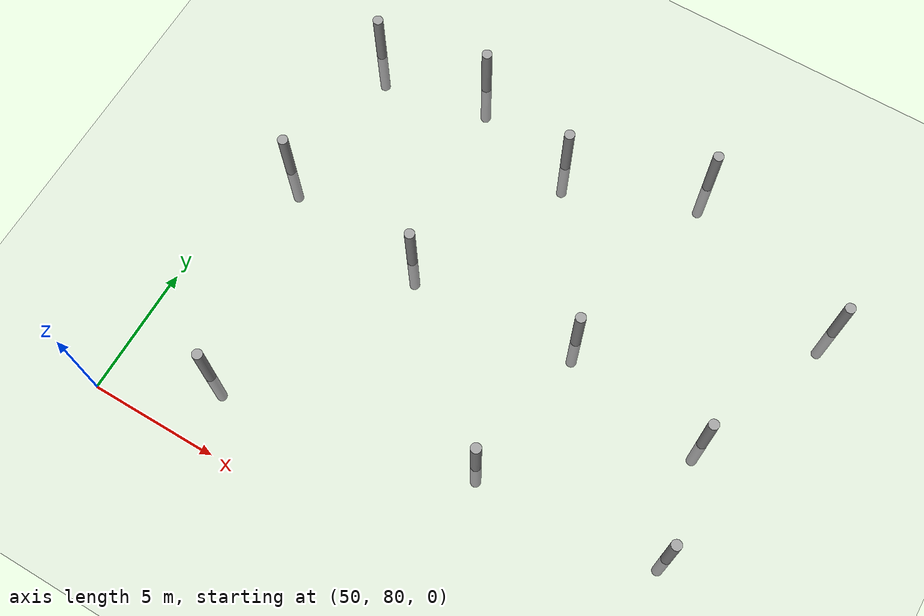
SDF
<sdf version="1.6">
 <world name="default">
  <model name="ground_plane">
   <static>1</static>
   <link name="link">
    <collision name="collision">
     <geometry><plane><normal>0 0 1</normal><size>100 100</size></plane></geometry>
     <surface><friction><ode><mu>100</mu><mu2>50</mu2></ode></friction></surface>
    </collision>
    <visual name="visual">
     <cast_shadows>0</cast_shadows>
     <geometry><plane><normal>0 0 1</normal><size>100 100</size></plane></geometry>
     <material>
      <script><uri>file://media/materials/scripts/gazebo.material</uri><name>Gazebo/Grey</name></script>
     </material>
    </visual>
   </link>
  </model>
  <model name="empty_pillars_2">
   <model name="empty_pillar_clone_16">
    <link name="link">
     <inertial>
      <mass>1</mass>
      <inertia><ixx>0.145833</ixx><ixy>0</ixy><ixz>0</ixz><iyy>0.145833</iyy><iyz>0</iyz><izz>0.125</izz></inertia>
     </inertial>
     <visual name="visual">
      <geometry><cylinder><radius>0.2</radius><length>5</length></cylinder></geometry>
      <material>
       <script><name>Gazebo/Grey</name><uri>file://media/materials/scripts/gazebo.material</uri></script>
       <shader type="vertex"><normal_map>__default__</normal_map></shader>
       <ambient>0.3 0.3 0.3 1</ambient>
       <diffuse>0.7 0.7 0.7 1</diffuse>
       <specular>0.01 0.01 0.01 1</specular>
       <emissive>0 0 0 1</emissive>
      </material>
     </visual>
     <collision name="collision">
      <geometry><cylinder><radius>0.05</radius><length>5</length></cylinder></geometry>
      <surface>
       <friction>
        <ode><mu>1</mu><mu2>1</mu2><fdir1>0 0 0</fdir1><slip1>0</slip1><slip2>0</slip2></ode>
        <torsional>
         <coefficient>1</coefficient>
         <patch_radius>0</patch_radius>
         <surface_radius>0</surface_radius>
         <use_patch_radius>1</use_patch_radius>
         <ode><slip>0</slip></ode>
        </torsional>
       </friction>
       <bounce><restitution_coefficient>0</restitution_coefficient><threshold>1e+06</threshold></bounce>
       <contact>
        <collide_without_contact>0</collide_without_contact>
        <collide_without_contact_bitmask>1</collide_without_contact_bitmask>
        <collide_bitmask>1</collide_bitmask>
        <ode>
         <soft_cfm>0</soft_cfm>
         <soft_erp>0.2</soft_erp>
         <kp>1e+13</kp>
         <kd>1</kd>
         <max_vel>0.01</max_vel>
         <min_depth>0</min_depth>
        </ode>
        <bullet>
         <split_impulse>1</split_impulse>
         <split_impulse_penetration_threshold>-0.01</split_impulse_penetration_threshold>
         <soft_cfm>0</soft_cfm>
         <soft_erp>0.2</soft_erp>
         <kp>1e+13</kp>
         <kd>1</kd>
        </bullet>
       </contact>
      </surface>
     </collision>
    </link>
    <static>0</static>
    <pose>-9.20789 13.0504 0 0 -0 0</pose>
   </model>
   <model name="empty_pillar_clone_17">
    <link name="link">
     <inertial>
      <mass>1</mass>
      <inertia><ixx>0.145833</ixx><ixy>0</ixy><ixz>0</ixz><iyy>0.145833</iyy><iyz>0</iyz><izz>0.125</izz></inertia>
     </inertial>
     <visual name="visual">
      <geometry><cylinder><radius>0.2</radius><length>5</length></cylinder></geometry>
      <material>
       <script><name>Gazebo/Grey</name><uri>file://media/materials/scripts/gazebo.material</uri></script>
       <shader type="vertex"><normal_map>__default__</normal_map></shader>
       <ambient>0.3 0.3 0.3 1</ambient>
       <diffuse>0.7 0.7 0.7 1</diffuse>
       <specular>0.01 0.01 0.01 1</specular>
       <emissive>0 0 0 1</emissive>
      </material>
     </visual>
     <collision name="collision">
      <geometry><cylinder><radius>0.05</radius><length>5</length></cylinder></geometry>
      <surface>
       <friction>
        <ode><mu>1</mu><mu2>1</mu2><fdir1>0 0 0</fdir1><slip1>0</slip1><slip2>0</slip2></ode>
        <torsional>
         <coefficient>1</coefficient>
         <patch_radius>0</patch_radius>
         <surface_radius>0</surface_radius>
         <use_patch_radius>1</use_patch_radius>
         <ode><slip>0</slip></ode>
        </torsional>
       </friction>
       <bounce><restitution_coefficient>0</restitution_coefficient><threshold>1e+06</threshold></bounce>
       <contact>
        <collide_without_contact>0</collide_without_contact>
        <collide_without_contact_bitmask>1</collide_without_contact_bitmask>
        <collide_bitmask>1</collide_bitmask>
        <ode>
         <soft_cfm>0</soft_cfm>
         <soft_erp>0.2</soft_erp>
         <kp>1e+13</kp>
         <kd>1</kd>
         <max_vel>0.01</max_vel>
         <min_depth>0</min_depth>
        </ode>
        <bullet>
         <split_impulse>1</split_impulse>
         <split_impulse_penetration_threshold>-0.01</split_impulse_penetration_threshold>
         <soft_cfm>0</soft_cfm>
         <soft_erp>0.2</soft_erp>
         <kp>1e+13</kp>
         <kd>1</kd>
        </bullet>
       </contact>
      </surface>
     </collision>
    </link>
    <static>0</static>
    <pose>-16.0449 12.755 0 0 -0 0</pose>
   </model>
   <model name="empty_pillar_clone_18">
    <link name="link">
     <inertial>
      <mass>1</mass>
      <inertia><ixx>0.145833</ixx><ixy>0</ixy><ixz>0</ixz><iyy>0.145833</iyy><iyz>0</iyz><izz>0.125</izz></inertia>
     </inertial>
     <visual name="visual">
      <geometry><cylinder><radius>0.2</radius><length>5</length></cylinder></geometry>
      <material>
       <script><name>Gazebo/Grey</name><uri>file://media/materials/scripts/gazebo.material</uri></script>
       <shader type="vertex"><normal_map>__default__</normal_map></shader>
       <ambient>0.3 0.3 0.3 1</ambient>
       <diffuse>0.7 0.7 0.7 1</diffuse>
       <specular>0.01 0.01 0.01 1</specular>
       <emissive>0 0 0 1</emissive>
      </material>
     </visual>
     <collision name="collision">
      <geometry><cylinder><radius>0.05</radius><length>5</length></cylinder></geometry>
      <surface>
       <friction>
        <ode><mu>1</mu><mu2>1</mu2><fdir1>0 0 0</fdir1><slip1>0</slip1><slip2>0</slip2></ode>
        <torsional>
         <coefficient>1</coefficient>
         <patch_radius>0</patch_radius>
         <surface_radius>0</surface_radius>
         <use_patch_radius>1</use_patch_radius>
         <ode><slip>0</slip></ode>
        </torsional>
       </friction>
       <bounce><restitution_coefficient>0</restitution_coefficient><threshold>1e+06</threshold></bounce>
       <contact>
        <collide_without_contact>0</collide_without_contact>
        <collide_without_contact_bitmask>1</collide_without_contact_bitmask>
        <collide_bitmask>1</collide_bitmask>
        <ode>
         <soft_cfm>0</soft_cfm>
         <soft_erp>0.2</soft_erp>
         <kp>1e+13</kp>
         <kd>1</kd>
         <max_vel>0.01</max_vel>
         <min_depth>0</min_depth>
        </ode>
        <bullet>
         <split_impulse>1</split_impulse>
         <split_impulse_penetration_threshold>-0.01</split_impulse_penetration_threshold>
         <soft_cfm>0</soft_cfm>
         <soft_erp>0.2</soft_erp>
         <kp>1e+13</kp>
         <kd>1</kd>
        </bullet>
       </contact>
      </surface>
     </collision>
    </link>
    <static>0</static>
    <pose>-20.0146 5.15966 0 0 -0 0</pose>
   </model>
   <model name="empty_pillar_clone_19">
    <link name="link">
     <inertial>
      <mass>1</mass>
      <inertia><ixx>0.145833</ixx><ixy>0</ixy><ixz>0</ixz><iyy>0.145833</iyy><iyz>0</iyz><izz>0.125</izz></inertia>
     </inertial>
     <visual name="visual">
      <geometry><cylinder><radius>0.2</radius><length>5</length></cylinder></geometry>
      <material>
       <script><name>Gazebo/Grey</name><uri>file://media/materials/scripts/gazebo.material</uri></script>
       <shader type="vertex"><normal_map>__default__</normal_map></shader>
       <ambient>0.3 0.3 0.3 1</ambient>
       <diffuse>0.7 0.7 0.7 1</diffuse>
       <specular>0.01 0.01 0.01 1</specular>
       <emissive>0 0 0 1</emissive>
      </material>
     </visual>
     <collision name="collision">
      <geometry><cylinder><radius>0.05</radius><length>5</length></cylinder></geometry>
      <surface>
       <friction>
        <ode><mu>1</mu><mu2>1</mu2><fdir1>0 0 0</fdir1><slip1>0</slip1><slip2>0</slip2></ode>
        <torsional>
         <coefficient>1</coefficient>
         <patch_radius>0</patch_radius>
         <surface_radius>0</surface_radius>
         <use_patch_radius>1</use_patch_radius>
         <ode><slip>0</slip></ode>
        </torsional>
       </friction>
       <bounce><restitution_coefficient>0</restitution_coefficient><threshold>1e+06</threshold></bounce>
       <contact>
        <collide_without_contact>0</collide_without_contact>
        <collide_without_contact_bitmask>1</collide_without_contact_bitmask>
        <collide_bitmask>1</collide_bitmask>
        <ode>
         <soft_cfm>0</soft_cfm>
         <soft_erp>0.2</soft_erp>
         <kp>1e+13</kp>
         <kd>1</kd>
         <max_vel>0.01</max_vel>
         <min_depth>0</min_depth>
        </ode>
        <bullet>
         <split_impulse>1</split_impulse>
         <split_impulse_penetration_threshold>-0.01</split_impulse_penetration_threshold>
         <soft_cfm>0</soft_cfm>
         <soft_erp>0.2</soft_erp>
         <kp>1e+13</kp>
         <kd>1</kd>
        </bullet>
       </contact>
      </surface>
     </collision>
    </link>
    <static>0</static>
    <pose>-10.0146 7.15966 0 0 -0 0</pose>
   </model>
   <model name="empty_pillar_clone_20">
    <link name="link">
     <inertial>
      <mass>1</mass>
      <inertia><ixx>0.145833</ixx><ixy>0</ixy><ixz>0</ixz><iyy>0.145833</iyy><iyz>0</iyz><izz>0.125</izz></inertia>
     </inertial>
     <visual name="visual">
      <geometry><cylinder><radius>0.2</radius><length>5</length></cylinder></geometry>
      <material>
       <script><name>Gazebo/Grey</name><uri>file://media/materials/scripts/gazebo.material</uri></script>
       <shader type="vertex"><normal_map>__default__</normal_map></shader>
       <ambient>0.3 0.3 0.3 1</ambient>
       <diffuse>0.7 0.7 0.7 1</diffuse>
       <specular>0.01 0.01 0.01 1</specular>
       <emissive>0 0 0 1</emissive>
      </material>
     </visual>
     <collision name="collision">
      <geometry><cylinder><radius>0.05</radius><length>5</length></cylinder></geometry>
      <surface>
       <friction>
        <ode><mu>1</mu><mu2>1</mu2><fdir1>0 0 0</fdir1><slip1>0</slip1><slip2>0</slip2></ode>
        <torsional>
         <coefficient>1</coefficient>
         <patch_radius>0</patch_radius>
         <surface_radius>0</surface_radius>
         <use_patch_radius>1</use_patch_radius>
         <ode><slip>0</slip></ode>
        </torsional>
       </friction>
       <bounce><restitution_coefficient>0</restitution_coefficient><threshold>1e+06</threshold></bounce>
       <contact>
        <collide_without_contact>0</collide_without_contact>
        <collide_without_contact_bitmask>1</collide_without_contact_bitmask>
        <collide_bitmask>1</collide_bitmask>
        <ode>
         <soft_cfm>0</soft_cfm>
         <soft_erp>0.2</soft_erp>
         <kp>1e+13</kp>
         <kd>1</kd>
         <max_vel>0.01</max_vel>
         <min_depth>0</min_depth>
        </ode>
        <bullet>
         <split_impulse>1</split_impulse>
         <split_impulse_penetration_threshold>-0.01</split_impulse_penetration_threshold>
         <soft_cfm>0</soft_cfm>
         <soft_erp>0.2</soft_erp>
         <kp>1e+13</kp>
         <kd>1</kd>
        </bullet>
       </contact>
      </surface>
     </collision>
    </link>
    <static>0</static>
    <pose>-13.0146 19.1597 0 0 -0 0</pose>
   </model>
   <model name="empty_pillar_clone_21">
    <link name="link">
     <inertial>
      <mass>1</mass>
      <inertia><ixx>0.145833</ixx><ixy>0</ixy><ixz>0</ixz><iyy>0.145833</iyy><iyz>0</iyz><izz>0.125</izz></inertia>
     </inertial>
     <visual name="visual">
      <geometry><cylinder><radius>0.2</radius><length>5</length></cylinder></geometry>
      <material>
       <script><name>Gazebo/Grey</name><uri>file://media/materials/scripts/gazebo.material</uri></script>
       <shader type="vertex"><normal_map>__default__</normal_map></shader>
       <ambient>0.3 0.3 0.3 1</ambient>
       <diffuse>0.7 0.7 0.7 1</diffuse>
       <specular>0.01 0.01 0.01 1</specular>
       <emissive>0 0 0 1</emissive>
      </material>
     </visual>
     <collision name="collision">
      <geometry><cylinder><radius>0.05</radius><length>5</length></cylinder></geometry>
      <surface>
       <friction>
        <ode><mu>1</mu><mu2>1</mu2><fdir1>0 0 0</fdir1><slip1>0</slip1><slip2>0</slip2></ode>
        <torsional>
         <coefficient>1</coefficient>
         <patch_radius>0</patch_radius>
         <surface_radius>0</surface_radius>
         <use_patch_radius>1</use_patch_radius>
         <ode><slip>0</slip></ode>
        </torsional>
       </friction>
       <bounce><restitution_coefficient>0</restitution_coefficient><threshold>1e+06</threshold></bounce>
       <contact>
        <collide_without_contact>0</collide_without_contact>
        <collide_without_contact_bitmask>1</collide_without_contact_bitmask>
        <collide_bitmask>1</collide_bitmask>
        <ode>
         <soft_cfm>0</soft_cfm>
         <soft_erp>0.2</soft_erp>
         <kp>1e+13</kp>
         <kd>1</kd>
         <max_vel>0.01</max_vel>
         <min_depth>0</min_depth>
        </ode>
        <bullet>
         <split_impulse>1</split_impulse>
         <split_impulse_penetration_threshold>-0.01</split_impulse_penetration_threshold>
         <soft_cfm>0</soft_cfm>
         <soft_erp>0.2</soft_erp>
         <kp>1e+13</kp>
         <kd>1</kd>
        </bullet>
       </contact>
      </surface>
     </collision>
    </link>
    <static>0</static>
    <pose>-21.7273 19.7662 0 0 -0 0</pose>
   </model>
   <model name="empty_pillar_clone_22">
    <link name="link">
     <inertial>
      <mass>1</mass>
      <inertia><ixx>0.145833</ixx><ixy>0</ixy><ixz>0</ixz><iyy>0.145833</iyy><iyz>0</iyz><izz>0.125</izz></inertia>
     </inertial>
     <visual name="visual">
      <geometry><cylinder><radius>0.2</radius><length>5</length></cylinder></geometry>
      <material>
       <script><name>Gazebo/Grey</name><uri>file://media/materials/scripts/gazebo.material</uri></script>
       <shader type="vertex"><normal_map>__default__</normal_map></shader>
       <ambient>0.3 0.3 0.3 1</ambient>
       <diffuse>0.7 0.7 0.7 1</diffuse>
       <specular>0.01 0.01 0.01 1</specular>
       <emissive>0 0 0 1</emissive>
      </material>
     </visual>
     <collision name="collision">
      <geometry><cylinder><radius>0.05</radius><length>5</length></cylinder></geometry>
      <surface>
       <friction>
        <ode><mu>1</mu><mu2>1</mu2><fdir1>0 0 0</fdir1><slip1>0</slip1><slip2>0</slip2></ode>
        <torsional>
         <coefficient>1</coefficient>
         <patch_radius>0</patch_radius>
         <surface_radius>0</surface_radius>
         <use_patch_radius>1</use_patch_radius>
         <ode><slip>0</slip></ode>
        </torsional>
       </friction>
       <bounce><restitution_coefficient>0</restitution_coefficient><threshold>1e+06</threshold></bounce>
       <contact>
        <collide_without_contact>0</collide_without_contact>
        <collide_without_contact_bitmask>1</collide_without_contact_bitmask>
        <collide_bitmask>1</collide_bitmask>
        <ode>
         <soft_cfm>0</soft_cfm>
         <soft_erp>0.2</soft_erp>
         <kp>1e+13</kp>
         <kd>1</kd>
         <max_vel>0.01</max_vel>
         <min_depth>0</min_depth>
        </ode>
        <bullet>
         <split_impulse>1</split_impulse>
         <split_impulse_penetration_threshold>-0.01</split_impulse_penetration_threshold>
         <soft_cfm>0</soft_cfm>
         <soft_erp>0.2</soft_erp>
         <kp>1e+13</kp>
         <kd>1</kd>
        </bullet>
       </contact>
      </surface>
     </collision>
    </link>
    <static>0</static>
    <pose>-17.3667 20.5782 0 0 -0 0</pose>
   </model>
   <model name="empty_pillar_clone_23">
    <link name="link">
     <inertial>
      <mass>1</mass>
      <inertia><ixx>0.145833</ixx><ixy>0</ixy><ixz>0</ixz><iyy>0.145833</iyy><iyz>0</iyz><izz>0.125</izz></inertia>
     </inertial>
     <visual name="visual">
      <geometry><cylinder><radius>0.2</radius><length>5</length></cylinder></geometry>
      <material>
       <script><name>Gazebo/Grey</name><uri>file://media/materials/scripts/gazebo.material</uri></script>
       <shader type="vertex"><normal_map>__default__</normal_map></shader>
       <ambient>0.3 0.3 0.3 1</ambient>
       <diffuse>0.7 0.7 0.7 1</diffuse>
       <specular>0.01 0.01 0.01 1</specular>
       <emissive>0 0 0 1</emissive>
      </material>
     </visual>
     <collision name="collision">
      <geometry><cylinder><radius>0.05</radius><length>5</length></cylinder></geometry>
      <surface>
       <friction>
        <ode><mu>1</mu><mu2>1</mu2><fdir1>0 0 0</fdir1><slip1>0</slip1><slip2>0</slip2></ode>
        <torsional>
         <coefficient>1</coefficient>
         <patch_radius>0</patch_radius>
         <surface_radius>0</surface_radius>
         <use_patch_radius>1</use_patch_radius>
         <ode><slip>0</slip></ode>
        </torsional>
       </friction>
       <bounce><restitution_coefficient>0</restitution_coefficient><threshold>1e+06</threshold></bounce>
       <contact>
        <collide_without_contact>0</collide_without_contact>
        <collide_without_contact_bitmask>1</collide_without_contact_bitmask>
        <collide_bitmask>1</collide_bitmask>
        <ode>
         <soft_cfm>0</soft_cfm>
         <soft_erp>0.2</soft_erp>
         <kp>1e+13</kp>
         <kd>1</kd>
         <max_vel>0.01</max_vel>
         <min_depth>0</min_depth>
        </ode>
        <bullet>
         <split_impulse>1</split_impulse>
         <split_impulse_penetration_threshold>-0.01</split_impulse_penetration_threshold>
         <soft_cfm>0</soft_cfm>
         <soft_erp>0.2</soft_erp>
         <kp>1e+13</kp>
         <kd>1</kd>
        </bullet>
       </contact>
      </surface>
     </collision>
    </link>
    <static>0</static>
    <pose>-1.21984 18.1273 0 0 -0 0</pose>
   </model>
   <model name="empty_pillar_clone_24">
    <link name="link">
     <inertial>
      <mass>1</mass>
      <inertia><ixx>0.145833</ixx><ixy>0</ixy><ixz>0</ixz><iyy>0.145833</iyy><iyz>0</iyz><izz>0.125</izz></inertia>
     </inertial>
     <visual name="visual">
      <geometry><cylinder><radius>0.2</radius><length>5</length></cylinder></geometry>
      <material>
       <script><name>Gazebo/Grey</name><uri>file://media/materials/scripts/gazebo.material</uri></script>
       <shader type="vertex"><normal_map>__default__</normal_map></shader>
       <ambient>0.3 0.3 0.3 1</ambient>
       <diffuse>0.7 0.7 0.7 1</diffuse>
       <specular>0.01 0.01 0.01 1</specular>
       <emissive>0 0 0 1</emissive>
      </material>
     </visual>
     <collision name="collision">
      <geometry><cylinder><radius>0.05</radius><length>5</length></cylinder></geometry>
      <surface>
       <friction>
        <ode><mu>1</mu><mu2>1</mu2><fdir1>0 0 0</fdir1><slip1>0</slip1><slip2>0</slip2></ode>
        <torsional>
         <coefficient>1</coefficient>
         <patch_radius>0</patch_radius>
         <surface_radius>0</surface_radius>
         <use_patch_radius>1</use_patch_radius>
         <ode><slip>0</slip></ode>
        </torsional>
       </friction>
       <bounce><restitution_coefficient>0</restitution_coefficient><threshold>1e+06</threshold></bounce>
       <contact>
        <collide_without_contact>0</collide_without_contact>
        <collide_without_contact_bitmask>1</collide_without_contact_bitmask>
        <collide_bitmask>1</collide_bitmask>
        <ode>
         <soft_cfm>0</soft_cfm>
         <soft_erp>0.2</soft_erp>
         <kp>1e+13</kp>
         <kd>1</kd>
         <max_vel>0.01</max_vel>
         <min_depth>0</min_depth>
        </ode>
        <bullet>
         <split_impulse>1</split_impulse>
         <split_impulse_penetration_threshold>-0.01</split_impulse_penetration_threshold>
         <soft_cfm>0</soft_cfm>
         <soft_erp>0.2</soft_erp>
         <kp>1e+13</kp>
         <kd>1</kd>
        </bullet>
       </contact>
      </surface>
     </collision>
    </link>
    <static>0</static>
    <pose>-3.46957 11.9413 0 0 -0 0</pose>
   </model>
   <model name="empty_pillar_clone_25">
    <link name="link">
     <inertial>
      <mass>1</mass>
      <inertia><ixx>0.145833</ixx><ixy>0</ixy><ixz>0</ixz><iyy>0.145833</iyy><iyz>0</iyz><izz>0.125</izz></inertia>
     </inertial>
     <visual name="visual">
      <geometry><cylinder><radius>0.2</radius><length>5</length></cylinder></geometry>
      <material>
       <script><name>Gazebo/Grey</name><uri>file://media/materials/scripts/gazebo.material</uri></script>
       <shader type="vertex"><normal_map>__default__</normal_map></shader>
       <ambient>0.3 0.3 0.3 1</ambient>
       <diffuse>0.7 0.7 0.7 1</diffuse>
       <specular>0.01 0.01 0.01 1</specular>
       <emissive>0 0 0 1</emissive>
      </material>
     </visual>
     <collision name="collision">
      <geometry><cylinder><radius>0.05</radius><length>5</length></cylinder></geometry>
      <surface>
       <friction>
        <ode><mu>1</mu><mu2>1</mu2><fdir1>0 0 0</fdir1><slip1>0</slip1><slip2>0</slip2></ode>
        <torsional>
         <coefficient>1</coefficient>
         <patch_radius>0</patch_radius>
         <surface_radius>0</surface_radius>
         <use_patch_radius>1</use_patch_radius>
         <ode><slip>0</slip></ode>
        </torsional>
       </friction>
       <bounce><restitution_coefficient>0</restitution_coefficient><threshold>1e+06</threshold></bounce>
       <contact>
        <collide_without_contact>0</collide_without_contact>
        <collide_without_contact_bitmask>1</collide_without_contact_bitmask>
        <collide_bitmask>1</collide_bitmask>
        <ode>
         <soft_cfm>0</soft_cfm>
         <soft_erp>0.2</soft_erp>
         <kp>1e+13</kp>
         <kd>1</kd>
         <max_vel>0.01</max_vel>
         <min_depth>0</min_depth>
        </ode>
        <bullet>
         <split_impulse>1</split_impulse>
         <split_impulse_penetration_threshold>-0.01</split_impulse_penetration_threshold>
         <soft_cfm>0</soft_cfm>
         <soft_erp>0.2</soft_erp>
         <kp>1e+13</kp>
         <kd>1</kd>
        </bullet>
       </contact>
      </surface>
     </collision>
    </link>
    <static>0</static>
    <pose>-7.86239 21.1314 0 0 -0 0</pose>
   </model>
   <model name="empty_pillar_clone_50">
    <link name="link">
     <inertial>
      <mass>1</mass>
      <inertia><ixx>0.145833</ixx><ixy>0</ixy><ixz>0</ixz><iyy>0.145833</iyy><iyz>0</iyz><izz>0.125</izz></inertia>
     </inertial>
     <visual name="visual">
      <geometry><cylinder><radius>0.2</radius><length>5</length></cylinder></geometry>
      <material>
       <script><name>Gazebo/Grey</name><uri>file://media/materials/scripts/gazebo.material</uri></script>
       <shader type="vertex"><normal_map>__default__</normal_map></shader>
       <ambient>0.3 0.3 0.3 1</ambient>
       <diffuse>0.7 0.7 0.7 1</diffuse>
       <specular>0.01 0.01 0.01 1</specular>
       <emissive>0 0 0 1</emissive>
      </material>
     </visual>
     <collision name="collision">
      <geometry><cylinder><radius>0.05</radius><length>5</length></cylinder></geometry>
      <surface>
       <friction>
        <ode><mu>1</mu><mu2>1</mu2><fdir1>0 0 0</fdir1><slip1>0</slip1><slip2>0</slip2></ode>
        <torsional>
         <coefficient>1</coefficient>
         <patch_radius>0</patch_radius>
         <surface_radius>0</surface_radius>
         <use_patch_radius>1</use_patch_radius>
         <ode><slip>0</slip></ode>
        </torsional>
       </friction>
       <bounce><restitution_coefficient>0</restitution_coefficient><threshold>1e+06</threshold></bounce>
       <contact>
        <collide_without_contact>0</collide_without_contact>
        <collide_without_contact_bitmask>1</collide_without_contact_bitmask>
        <collide_bitmask>1</collide_bitmask>
        <ode>
         <soft_cfm>0</soft_cfm>
         <soft_erp>0.2</soft_erp>
         <kp>1e+13</kp>
         <kd>1</kd>
         <max_vel>0.01</max_vel>
         <min_depth>0</min_depth>
        </ode>
        <bullet>
         <split_impulse>1</split_impulse>
         <split_impulse_penetration_threshold>-0.01</split_impulse_penetration_threshold>
         <soft_cfm>0</soft_cfm>
         <soft_erp>0.2</soft_erp>
         <kp>1e+13</kp>
         <kd>1</kd>
        </bullet>
       </contact>
      </surface>
     </collision>
    </link>
    <static>0</static>
    <pose>-22.0498 13.6251 0 0 -0 0</pose>
   </model>
   <model name="empty_pillar_clone_56">
    <link name="link">
     <inertial>
      <mass>1</mass>
      <inertia><ixx>0.145833</ixx><ixy>0</ixy><ixz>0</ixz><iyy>0.145833</iyy><iyz>0</iyz><izz>0.125</izz></inertia>
     </inertial>
     <visual name="visual">
      <geometry><cylinder><radius>0.2</radius><length>5</length></cylinder></geometry>
      <material>
       <script><name>Gazebo/Grey</name><uri>file://media/materials/scripts/gazebo.material</uri></script>
       <shader type="vertex"><normal_map>__default__</normal_map></shader>
       <ambient>0.3 0.3 0.3 1</ambient>
       <diffuse>0.7 0.7 0.7 1</diffuse>
       <specular>0.01 0.01 0.01 1</specular>
       <emissive>0 0 0 1</emissive>
      </material>
     </visual>
     <collision name="collision">
      <geometry><cylinder><radius>0.05</radius><length>5</length></cylinder></geometry>
      <surface>
       <friction>
        <ode><mu>1</mu><mu2>1</mu2><fdir1>0 0 0</fdir1><slip1>0</slip1><slip2>0</slip2></ode>
        <torsional>
         <coefficient>1</coefficient>
         <patch_radius>0</patch_radius>
         <surface_radius>0</surface_radius>
         <use_patch_radius>1</use_patch_radius>
         <ode><slip>0</slip></ode>
        </torsional>
       </friction>
       <bounce><restitution_coefficient>0</restitution_coefficient><threshold>1e+06</threshold></bounce>
       <contact>
        <collide_without_contact>0</collide_without_contact>
        <collide_without_contact_bitmask>1</collide_without_contact_bitmask>
        <collide_bitmask>1</collide_bitmask>
        <ode>
         <soft_cfm>0</soft_cfm>
         <soft_erp>0.2</soft_erp>
         <kp>1e+13</kp>
         <kd>1</kd>
         <max_vel>0.01</max_vel>
         <min_depth>0</min_depth>
        </ode>
        <bullet>
         <split_impulse>1</split_impulse>
         <split_impulse_penetration_threshold>-0.01</split_impulse_penetration_threshold>
         <soft_cfm>0</soft_cfm>
         <soft_erp>0.2</soft_erp>
         <kp>1e+13</kp>
         <kd>1</kd>
        </bullet>
       </contact>
      </surface>
     </collision>
    </link>
    <static>0</static>
    <pose>-2.69782 7.67053 0 0 -0 0</pose>
   </model>
   <static>0</static>
   <pose>73.3006 77.2503 0 0 -0 0</pose>
  </model>
 </world>
</sdf>
